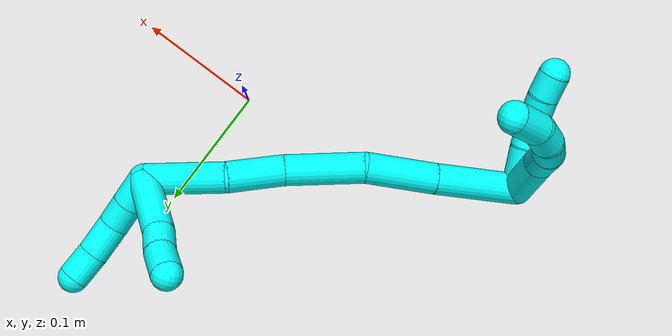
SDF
<sdf version="1.7">
 <world name="default">
  <model name="3">
   <static>0</static>
   <link name="3">
    <collision name="collision-cylinder-e_1_2_8">
     <pose>0.017712 -0.007027 -0.017531 2.76037 0.753314 2.23389</pose>
     <geometry><cylinder><radius>0.0125</radius><length>0.051785</length></cylinder></geometry>
     <surface>
      <friction><ode><mu>1.16</mu><mu2>1.16</mu2><slip1>0</slip1><slip2>0</slip2></ode></friction>
      <contact><ode><kp>1e+06</kp><kd>1</kd><max_vel>0</max_vel><min_depth>0.001</min_depth></ode></contact>
     </surface>
    </collision>
    <visual name="visual-cylinder-e_1_2_8">
     <pose>0.017712 -0.007027 -0.017531 2.76037 0.753314 2.23389</pose>
     <geometry><cylinder><radius>0.0125</radius><length>0.051785</length></cylinder></geometry>
     <material><ambient>0.003922 1 0.996078 1</ambient></material>
    </visual>
    <collision name="collision-cylinder-e_2_8_9">
     <pose>0.047126 -0.017711 -0.042239 2.67033 0.967938 2.28471</pose>
     <geometry><cylinder><radius>0.0125</radius><length>0.028412</length></cylinder></geometry>
     <surface>
      <friction><ode><mu>1.16</mu><mu2>1.16</mu2><slip1>0</slip1><slip2>0</slip2></ode></friction>
      <contact><ode><kp>1e+06</kp><kd>1</kd><max_vel>0</max_vel><min_depth>0.001</min_depth></ode></contact>
     </surface>
    </collision>
    <visual name="visual-cylinder-e_2_8_9">
     <pose>0.047126 -0.017711 -0.042239 2.67033 0.967938 2.28471</pose>
     <geometry><cylinder><radius>0.0125</radius><length>0.028412</length></cylinder></geometry>
     <material><ambient>0.003922 1 0.996078 1</ambient></material>
    </visual>
    <collision name="collision-cylinder-e_3_9_10">
     <pose>0.068001 -0.020752 -0.054767 -3.02702 1.03976 -2.94188</pose>
     <geometry><cylinder><radius>0.0125</radius><length>0.021275</length></cylinder></geometry>
     <surface>
      <friction><ode><mu>1.16</mu><mu2>1.16</mu2><slip1>0</slip1><slip2>0</slip2></ode></friction>
      <contact><ode><kp>1e+06</kp><kd>1</kd><max_vel>0</max_vel><min_depth>0.001</min_depth></ode></contact>
     </surface>
    </collision>
    <visual name="visual-cylinder-e_3_9_10">
     <pose>0.068001 -0.020752 -0.054767 -3.02702 1.03976 -2.94188</pose>
     <geometry><cylinder><radius>0.0125</radius><length>0.021275</length></cylinder></geometry>
     <material><ambient>0.003922 1 0.996078 1</ambient></material>
    </visual>
    <collision name="collision-cylinder-e_4_10_11">
     <pose>0.085385 -0.016444 -0.065021 -2.49602 0.929045 -1.96443</pose>
     <geometry><cylinder><radius>0.0125</radius><length>0.020503</length></cylinder></geometry>
     <surface>
      <friction><ode><mu>1.16</mu><mu2>1.16</mu2><slip1>0</slip1><slip2>0</slip2></ode></friction>
      <contact><ode><kp>1e+06</kp><kd>1</kd><max_vel>0</max_vel><min_depth>0.001</min_depth></ode></contact>
     </surface>
    </collision>
    <visual name="visual-cylinder-e_4_10_11">
     <pose>0.085385 -0.016444 -0.065021 -2.49602 0.929045 -1.96443</pose>
     <geometry><cylinder><radius>0.0125</radius><length>0.020503</length></cylinder></geometry>
     <material><ambient>0.003922 1 0.996078 1</ambient></material>
    </visual>
    <collision name="collision-cylinder-e_5_11_6">
     <pose>0.104946 -0.005016 -0.072698 -1.91528 0.944051 -1.25534</pose>
     <geometry><cylinder><radius>0.0125</radius><length>0.028024</length></cylinder></geometry>
     <surface>
      <friction><ode><mu>1.16</mu><mu2>1.16</mu2><slip1>0</slip1><slip2>0</slip2></ode></friction>
      <contact><ode><kp>1e+06</kp><kd>1</kd><max_vel>0</max_vel><min_depth>0.001</min_depth></ode></contact>
     </surface>
    </collision>
    <visual name="visual-cylinder-e_5_11_6">
     <pose>0.104946 -0.005016 -0.072698 -1.91528 0.944051 -1.25534</pose>
     <geometry><cylinder><radius>0.0125</radius><length>0.028024</length></cylinder></geometry>
     <material><ambient>0.003922 1 0.996078 1</ambient></material>
    </visual>
    <collision name="collision-cylinder-e_1_2_12">
     <pose>0.000857 0.002654 -0.01733 -2.98965 0.048864 -0.621301</pose>
     <geometry><cylinder><radius>0.0125</radius><length>0.035106</length></cylinder></geometry>
     <surface>
      <friction><ode><mu>1.16</mu><mu2>1.16</mu2><slip1>0</slip1><slip2>0</slip2></ode></friction>
      <contact><ode><kp>1e+06</kp><kd>1</kd><max_vel>0</max_vel><min_depth>0.001</min_depth></ode></contact>
     </surface>
    </collision>
    <visual name="visual-cylinder-e_1_2_12">
     <pose>0.000857 0.002654 -0.01733 -2.98965 0.048864 -0.621301</pose>
     <geometry><cylinder><radius>0.0125</radius><length>0.035106</length></cylinder></geometry>
     <material><ambient>0.003922 1 0.996078 1</ambient></material>
    </visual>
    <collision name="collision-cylinder-e_2_12_13">
     <pose>0.001203 0.006366 -0.045775 -3.04661 -0.045763 0.897503</pose>
     <geometry><cylinder><radius>0.0125</radius><length>0.022353</length></cylinder></geometry>
     <surface>
      <friction><ode><mu>1.16</mu><mu2>1.16</mu2><slip1>0</slip1><slip2>0</slip2></ode></friction>
      <contact><ode><kp>1e+06</kp><kd>1</kd><max_vel>0</max_vel><min_depth>0.001</min_depth></ode></contact>
     </surface>
    </collision>
    <visual name="visual-cylinder-e_2_12_13">
     <pose>0.001203 0.006366 -0.045775 -3.04661 -0.045763 0.897503</pose>
     <geometry><cylinder><radius>0.0125</radius><length>0.022353</length></cylinder></geometry>
     <material><ambient>0.003922 1 0.996078 1</ambient></material>
    </visual>
    <collision name="collision-cylinder-e_3_13_14">
     <pose>0.003135 0.007118 -0.06759 3.11293 0.224344 2.88852</pose>
     <geometry><cylinder><radius>0.0125</radius><length>0.021961</length></cylinder></geometry>
     <surface>
      <friction><ode><mu>1.16</mu><mu2>1.16</mu2><slip1>0</slip1><slip2>0</slip2></ode></friction>
      <contact><ode><kp>1e+06</kp><kd>1</kd><max_vel>0</max_vel><min_depth>0.001</min_depth></ode></contact>
     </surface>
    </collision>
    <visual name="visual-cylinder-e_3_13_14">
     <pose>0.003135 0.007118 -0.06759 3.11293 0.224344 2.88852</pose>
     <geometry><cylinder><radius>0.0125</radius><length>0.021961</length></cylinder></geometry>
     <material><ambient>0.003922 1 0.996078 1</ambient></material>
    </visual>
    <collision name="collision-cylinder-e_4_14_5">
     <pose>0.006778 0.005771 -0.088458 3.03963 0.11687 1.70707</pose>
     <geometry><cylinder><radius>0.0125</radius><length>0.020579</length></cylinder></geometry>
     <surface>
      <friction><ode><mu>1.16</mu><mu2>1.16</mu2><slip1>0</slip1><slip2>0</slip2></ode></friction>
      <contact><ode><kp>1e+06</kp><kd>1</kd><max_vel>0</max_vel><min_depth>0.001</min_depth></ode></contact>
     </surface>
    </collision>
    <visual name="visual-cylinder-e_4_14_5">
     <pose>0.006778 0.005771 -0.088458 3.03963 0.11687 1.70707</pose>
     <geometry><cylinder><radius>0.0125</radius><length>0.020579</length></cylinder></geometry>
     <material><ambient>0.003922 1 0.996078 1</ambient></material>
    </visual>
    <collision name="collision-cylinder-e_1_2_15">
     <pose>0.016853 0.028982 0.005405 -1.38643 0.519302 -0.434412</pose>
     <geometry><cylinder><radius>0.0125</radius><length>0.067916</length></cylinder></geometry>
     <surface>
      <friction><ode><mu>1.16</mu><mu2>1.16</mu2><slip1>0</slip1><slip2>0</slip2></ode></friction>
      <contact><ode><kp>1e+06</kp><kd>1</kd><max_vel>0</max_vel><min_depth>0.001</min_depth></ode></contact>
     </surface>
    </collision>
    <visual name="visual-cylinder-e_1_2_15">
     <pose>0.016853 0.028982 0.005405 -1.38643 0.519302 -0.434412</pose>
     <geometry><cylinder><radius>0.0125</radius><length>0.067916</length></cylinder></geometry>
     <material><ambient>0.003922 1 0.996078 1</ambient></material>
    </visual>
    <collision name="collision-cylinder-e_2_15_16">
     <pose>0.047646 0.08277 0.014538 -1.42161 0.507238 -0.43911</pose>
     <geometry><cylinder><radius>0.0125</radius><length>0.057398</length></cylinder></geometry>
     <surface>
      <friction><ode><mu>1.16</mu><mu2>1.16</mu2><slip1>0</slip1><slip2>0</slip2></ode></friction>
      <contact><ode><kp>1e+06</kp><kd>1</kd><max_vel>0</max_vel><min_depth>0.001</min_depth></ode></contact>
     </surface>
    </collision>
    <visual name="visual-cylinder-e_2_15_16">
     <pose>0.047646 0.08277 0.014538 -1.42161 0.507238 -0.43911</pose>
     <geometry><cylinder><radius>0.0125</radius><length>0.057398</length></cylinder></geometry>
     <material><ambient>0.003922 1 0.996078 1</ambient></material>
    </visual>
    <collision name="collision-cylinder-e_3_16_17">
     <pose>0.072792 0.135328 0.029714 -1.17956 0.357262 -0.240503</pose>
     <geometry><cylinder><radius>0.0125</radius><length>0.064085</length></cylinder></geometry>
     <surface>
      <friction><ode><mu>1.16</mu><mu2>1.16</mu2><slip1>0</slip1><slip2>0</slip2></ode></friction>
      <contact><ode><kp>1e+06</kp><kd>1</kd><max_vel>0</max_vel><min_depth>0.001</min_depth></ode></contact>
     </surface>
    </collision>
    <visual name="visual-cylinder-e_3_16_17">
     <pose>0.072792 0.135328 0.029714 -1.17956 0.357262 -0.240503</pose>
     <geometry><cylinder><radius>0.0125</radius><length>0.064085</length></cylinder></geometry>
     <material><ambient>0.003922 1 0.996078 1</ambient></material>
    </visual>
    <collision name="collision-cylinder-e_4_17_18">
     <pose>0.097692 0.180206 0.049548 -1.11547 0.62274 -0.396257</pose>
     <geometry><cylinder><radius>0.0125</radius><length>0.046955</length></cylinder></geometry>
     <surface>
      <friction><ode><mu>1.16</mu><mu2>1.16</mu2><slip1>0</slip1><slip2>0</slip2></ode></friction>
      <contact><ode><kp>1e+06</kp><kd>1</kd><max_vel>0</max_vel><min_depth>0.001</min_depth></ode></contact>
     </surface>
    </collision>
    <visual name="visual-cylinder-e_4_17_18">
     <pose>0.097692 0.180206 0.049548 -1.11547 0.62274 -0.396257</pose>
     <geometry><cylinder><radius>0.0125</radius><length>0.046955</length></cylinder></geometry>
     <material><ambient>0.003922 1 0.996078 1</ambient></material>
    </visual>
    <collision name="collision-cylinder-e_5_18_1">
     <pose>0.12271 0.22493 0.06902 -1.1888 0.363838 -0.247415</pose>
     <geometry><cylinder><radius>0.0125</radius><length>0.063646</length></cylinder></geometry>
     <surface>
      <friction><ode><mu>1.16</mu><mu2>1.16</mu2><slip1>0</slip1><slip2>0</slip2></ode></friction>
      <contact><ode><kp>1e+06</kp><kd>1</kd><max_vel>0</max_vel><min_depth>0.001</min_depth></ode></contact>
     </surface>
    </collision>
    <visual name="visual-cylinder-e_5_18_1">
     <pose>0.12271 0.22493 0.06902 -1.1888 0.363838 -0.247415</pose>
     <geometry><cylinder><radius>0.0125</radius><length>0.063646</length></cylinder></geometry>
     <material><ambient>0.003922 1 0.996078 1</ambient></material>
    </visual>
    <collision name="collision-cylinder-e_1_1_19">
     <pose>0.134114 0.255981 0.092003 -0.282616 0.006453 -0.000918</pose>
     <geometry><cylinder><radius>0.0125</radius><length>0.024777</length></cylinder></geometry>
     <surface>
      <friction><ode><mu>1.16</mu><mu2>1.16</mu2><slip1>0</slip1><slip2>0</slip2></ode></friction>
      <contact><ode><kp>1e+06</kp><kd>1</kd><max_vel>0</max_vel><min_depth>0.001</min_depth></ode></contact>
     </surface>
    </collision>
    <visual name="visual-cylinder-e_1_1_19">
     <pose>0.134114 0.255981 0.092003 -0.282616 0.006453 -0.000918</pose>
     <geometry><cylinder><radius>0.0125</radius><length>0.024777</length></cylinder></geometry>
     <material><ambient>0.003922 1 0.996078 1</ambient></material>
    </visual>
    <collision name="collision-cylinder-e_2_19_20">
     <pose>0.134205 0.262489 0.114518 -0.280007 0.000966 -0.000136</pose>
     <geometry><cylinder><radius>0.0125</radius><length>0.022097</length></cylinder></geometry>
     <surface>
      <friction><ode><mu>1.16</mu><mu2>1.16</mu2><slip1>0</slip1><slip2>0</slip2></ode></friction>
      <contact><ode><kp>1e+06</kp><kd>1</kd><max_vel>0</max_vel><min_depth>0.001</min_depth></ode></contact>
     </surface>
    </collision>
    <visual name="visual-cylinder-e_2_19_20">
     <pose>0.134205 0.262489 0.114518 -0.280007 0.000966 -0.000136</pose>
     <geometry><cylinder><radius>0.0125</radius><length>0.022097</length></cylinder></geometry>
     <material><ambient>0.003922 1 0.996078 1</ambient></material>
    </visual>
    <collision name="collision-cylinder-e_3_20_21">
     <pose>0.13812 0.268571 0.138598 -0.221296 0.275745 -0.030829</pose>
     <geometry><cylinder><radius>0.0125</radius><length>0.028681</length></cylinder></geometry>
     <surface>
      <friction><ode><mu>1.16</mu><mu2>1.16</mu2><slip1>0</slip1><slip2>0</slip2></ode></friction>
      <contact><ode><kp>1e+06</kp><kd>1</kd><max_vel>0</max_vel><min_depth>0.001</min_depth></ode></contact>
     </surface>
    </collision>
    <visual name="visual-cylinder-e_3_20_21">
     <pose>0.13812 0.268571 0.138598 -0.221296 0.275745 -0.030829</pose>
     <geometry><cylinder><radius>0.0125</radius><length>0.028681</length></cylinder></geometry>
     <material><ambient>0.003922 1 0.996078 1</ambient></material>
    </visual>
    <collision name="collision-cylinder-e_4_21_4">
     <pose>0.146258 0.274606 0.163126 -0.26532 0.353676 -0.047685</pose>
     <geometry><cylinder><radius>0.0125</radius><length>0.024445</length></cylinder></geometry>
     <surface>
      <friction><ode><mu>1.16</mu><mu2>1.16</mu2><slip1>0</slip1><slip2>0</slip2></ode></friction>
      <contact><ode><kp>1e+06</kp><kd>1</kd><max_vel>0</max_vel><min_depth>0.001</min_depth></ode></contact>
     </surface>
    </collision>
    <visual name="visual-cylinder-e_4_21_4">
     <pose>0.146258 0.274606 0.163126 -0.26532 0.353676 -0.047685</pose>
     <geometry><cylinder><radius>0.0125</radius><length>0.024445</length></cylinder></geometry>
     <material><ambient>0.003922 1 0.996078 1</ambient></material>
    </visual>
    <collision name="collision-cylinder-e_1_1_22">
     <pose>0.149217 0.233332 0.091259 1.04444 0.599861 0.352278</pose>
     <geometry><cylinder><radius>0.0125</radius><length>0.053787</length></cylinder></geometry>
     <surface>
      <friction><ode><mu>1.16</mu><mu2>1.16</mu2><slip1>0</slip1><slip2>0</slip2></ode></friction>
      <contact><ode><kp>1e+06</kp><kd>1</kd><max_vel>0</max_vel><min_depth>0.001</min_depth></ode></contact>
     </surface>
    </collision>
    <visual name="visual-cylinder-e_1_1_22">
     <pose>0.149217 0.233332 0.091259 1.04444 0.599861 0.352278</pose>
     <geometry><cylinder><radius>0.0125</radius><length>0.053787</length></cylinder></geometry>
     <material><ambient>0.003922 1 0.996078 1</ambient></material>
    </visual>
    <collision name="collision-cylinder-e_2_22_23">
     <pose>0.172094 0.208013 0.106204 1.01633 0.818271 0.473921</pose>
     <geometry><cylinder><radius>0.0125</radius><length>0.021083</length></cylinder></geometry>
     <surface>
      <friction><ode><mu>1.16</mu><mu2>1.16</mu2><slip1>0</slip1><slip2>0</slip2></ode></friction>
      <contact><ode><kp>1e+06</kp><kd>1</kd><max_vel>0</max_vel><min_depth>0.001</min_depth></ode></contact>
     </surface>
    </collision>
    <visual name="visual-cylinder-e_2_22_23">
     <pose>0.172094 0.208013 0.106204 1.01633 0.818271 0.473921</pose>
     <geometry><cylinder><radius>0.0125</radius><length>0.021083</length></cylinder></geometry>
     <material><ambient>0.003922 1 0.996078 1</ambient></material>
    </visual>
    <collision name="collision-cylinder-e_3_23_3">
     <pose>0.188208 0.193099 0.113119 1.22954 0.73432 0.530297</pose>
     <geometry><cylinder><radius>0.0125</radius><length>0.02513</length></cylinder></geometry>
     <surface>
      <friction><ode><mu>1.16</mu><mu2>1.16</mu2><slip1>0</slip1><slip2>0</slip2></ode></friction>
      <contact><ode><kp>1e+06</kp><kd>1</kd><max_vel>0</max_vel><min_depth>0.001</min_depth></ode></contact>
     </surface>
    </collision>
    <visual name="visual-cylinder-e_3_23_3">
     <pose>0.188208 0.193099 0.113119 1.22954 0.73432 0.530297</pose>
     <geometry><cylinder><radius>0.0125</radius><length>0.02513</length></cylinder></geometry>
     <material><ambient>0.003922 1 0.996078 1</ambient></material>
    </visual>
    <collision name="collision-sphere-3">
     <pose>0.196628 0.18431 0.11624 0 -0 0</pose>
     <geometry><sphere><radius>0.0125</radius></sphere></geometry>
     <surface>
      <friction><ode><mu>1.16</mu><mu2>1.16</mu2><slip1>0</slip1><slip2>0</slip2></ode></friction>
      <contact><ode><kp>1e+06</kp><kd>1</kd><max_vel>0</max_vel><min_depth>0.001</min_depth></ode></contact>
     </surface>
    </collision>
    <visual name="visual-sphere-3">
     <pose>0.196628 0.18431 0.11624 0 -0 0</pose>
     <geometry><sphere><radius>0.0125</radius></sphere></geometry>
     <material><ambient>0.003922 1 0.996078 1</ambient></material>
    </visual>
    <collision name="collision-sphere-23">
     <pose>0.179789 0.201887 0.109997 0 -0 0</pose>
     <geometry><sphere><radius>0.0125</radius></sphere></geometry>
     <surface>
      <friction><ode><mu>1.16</mu><mu2>1.16</mu2><slip1>0</slip1><slip2>0</slip2></ode></friction>
      <contact><ode><kp>1e+06</kp><kd>1</kd><max_vel>0</max_vel><min_depth>0.001</min_depth></ode></contact>
     </surface>
    </collision>
    <visual name="visual-sphere-23">
     <pose>0.179789 0.201887 0.109997 0 -0 0</pose>
     <geometry><sphere><radius>0.0125</radius></sphere></geometry>
     <material><ambient>0.003922 1 0.996078 1</ambient></material>
    </visual>
    <collision name="collision-sphere-22">
     <pose>0.164399 0.214138 0.102411 0 -0 0</pose>
     <geometry><sphere><radius>0.0125</radius></sphere></geometry>
     <surface>
      <friction><ode><mu>1.16</mu><mu2>1.16</mu2><slip1>0</slip1><slip2>0</slip2></ode></friction>
      <contact><ode><kp>1e+06</kp><kd>1</kd><max_vel>0</max_vel><min_depth>0.001</min_depth></ode></contact>
     </surface>
    </collision>
    <visual name="visual-sphere-22">
     <pose>0.164399 0.214138 0.102411 0 -0 0</pose>
     <geometry><sphere><radius>0.0125</radius></sphere></geometry>
     <material><ambient>0.003922 1 0.996078 1</ambient></material>
    </visual>
    <collision name="collision-sphere-4">
     <pose>0.150491 0.277613 0.174191 0 -0 0</pose>
     <geometry><sphere><radius>0.0125</radius></sphere></geometry>
     <surface>
      <friction><ode><mu>1.16</mu><mu2>1.16</mu2><slip1>0</slip1><slip2>0</slip2></ode></friction>
      <contact><ode><kp>1e+06</kp><kd>1</kd><max_vel>0</max_vel><min_depth>0.001</min_depth></ode></contact>
     </surface>
    </collision>
    <visual name="visual-sphere-4">
     <pose>0.150491 0.277613 0.174191 0 -0 0</pose>
     <geometry><sphere><radius>0.0125</radius></sphere></geometry>
     <material><ambient>0.003922 1 0.996078 1</ambient></material>
    </visual>
    <collision name="collision-sphere-21">
     <pose>0.142024 0.2716 0.152061 0 -0 0</pose>
     <geometry><sphere><radius>0.0125</radius></sphere></geometry>
     <surface>
      <friction><ode><mu>1.16</mu><mu2>1.16</mu2><slip1>0</slip1><slip2>0</slip2></ode></friction>
      <contact><ode><kp>1e+06</kp><kd>1</kd><max_vel>0</max_vel><min_depth>0.001</min_depth></ode></contact>
     </surface>
    </collision>
    <visual name="visual-sphere-21">
     <pose>0.142024 0.2716 0.152061 0 -0 0</pose>
     <geometry><sphere><radius>0.0125</radius></sphere></geometry>
     <material><ambient>0.003922 1 0.996078 1</ambient></material>
    </visual>
    <collision name="collision-sphere-20">
     <pose>0.134216 0.265542 0.125136 0 -0 0</pose>
     <geometry><sphere><radius>0.0125</radius></sphere></geometry>
     <surface>
      <friction><ode><mu>1.16</mu><mu2>1.16</mu2><slip1>0</slip1><slip2>0</slip2></ode></friction>
      <contact><ode><kp>1e+06</kp><kd>1</kd><max_vel>0</max_vel><min_depth>0.001</min_depth></ode></contact>
     </surface>
    </collision>
    <visual name="visual-sphere-20">
     <pose>0.134216 0.265542 0.125136 0 -0 0</pose>
     <geometry><sphere><radius>0.0125</radius></sphere></geometry>
     <material><ambient>0.003922 1 0.996078 1</ambient></material>
    </visual>
    <collision name="collision-sphere-6">
     <pose>0.116295 0.002719 -0.075473 0 -0 0</pose>
     <geometry><sphere><radius>0.0125</radius></sphere></geometry>
     <surface>
      <friction><ode><mu>1.16</mu><mu2>1.16</mu2><slip1>0</slip1><slip2>0</slip2></ode></friction>
      <contact><ode><kp>1e+06</kp><kd>1</kd><max_vel>0</max_vel><min_depth>0.001</min_depth></ode></contact>
     </surface>
    </collision>
    <visual name="visual-sphere-6">
     <pose>0.116295 0.002719 -0.075473 0 -0 0</pose>
     <geometry><sphere><radius>0.0125</radius></sphere></geometry>
     <material><ambient>0.003922 1 0.996078 1</ambient></material>
    </visual>
    <collision name="collision-sphere-11">
     <pose>0.093597 -0.012752 -0.069922 0 -0 0</pose>
     <geometry><sphere><radius>0.0125</radius></sphere></geometry>
     <surface>
      <friction><ode><mu>1.16</mu><mu2>1.16</mu2><slip1>0</slip1><slip2>0</slip2></ode></friction>
      <contact><ode><kp>1e+06</kp><kd>1</kd><max_vel>0</max_vel><min_depth>0.001</min_depth></ode></contact>
     </surface>
    </collision>
    <visual name="visual-sphere-11">
     <pose>0.093597 -0.012752 -0.069922 0 -0 0</pose>
     <geometry><sphere><radius>0.0125</radius></sphere></geometry>
     <material><ambient>0.003922 1 0.996078 1</ambient></material>
    </visual>
    <collision name="collision-sphere-10">
     <pose>0.077173 -0.020136 -0.060119 0 -0 0</pose>
     <geometry><sphere><radius>0.0125</radius></sphere></geometry>
     <surface>
      <friction><ode><mu>1.16</mu><mu2>1.16</mu2><slip1>0</slip1><slip2>0</slip2></ode></friction>
      <contact><ode><kp>1e+06</kp><kd>1</kd><max_vel>0</max_vel><min_depth>0.001</min_depth></ode></contact>
     </surface>
    </collision>
    <visual name="visual-sphere-10">
     <pose>0.077173 -0.020136 -0.060119 0 -0 0</pose>
     <geometry><sphere><radius>0.0125</radius></sphere></geometry>
     <material><ambient>0.003922 1 0.996078 1</ambient></material>
    </visual>
    <collision name="collision-sphere-9">
     <pose>0.058828 -0.021368 -0.049416 0 -0 0</pose>
     <geometry><sphere><radius>0.0125</radius></sphere></geometry>
     <surface>
      <friction><ode><mu>1.16</mu><mu2>1.16</mu2><slip1>0</slip1><slip2>0</slip2></ode></friction>
      <contact><ode><kp>1e+06</kp><kd>1</kd><max_vel>0</max_vel><min_depth>0.001</min_depth></ode></contact>
     </surface>
    </collision>
    <visual name="visual-sphere-9">
     <pose>0.058828 -0.021368 -0.049416 0 -0 0</pose>
     <geometry><sphere><radius>0.0125</radius></sphere></geometry>
     <material><ambient>0.003922 1 0.996078 1</ambient></material>
    </visual>
    <collision name="collision-sphere-2">
     <geometry><sphere><radius>0.0125</radius></sphere></geometry>
     <surface>
      <friction><ode><mu>1.16</mu><mu2>1.16</mu2><slip1>0</slip1><slip2>0</slip2></ode></friction>
      <contact><ode><kp>1e+06</kp><kd>1</kd><max_vel>0</max_vel><min_depth>0.001</min_depth></ode></contact>
     </surface>
    </collision>
    <visual name="visual-sphere-2">
     <geometry><sphere><radius>0.0125</radius></sphere></geometry>
     <material><ambient>0.003922 1 0.996078 1</ambient></material>
    </visual>
    <collision name="collision-sphere-19">
     <pose>0.134194 0.259435 0.1039 0 -0 0</pose>
     <geometry><sphere><radius>0.0125</radius></sphere></geometry>
     <surface>
      <friction><ode><mu>1.16</mu><mu2>1.16</mu2><slip1>0</slip1><slip2>0</slip2></ode></friction>
      <contact><ode><kp>1e+06</kp><kd>1</kd><max_vel>0</max_vel><min_depth>0.001</min_depth></ode></contact>
     </surface>
    </collision>
    <visual name="visual-sphere-19">
     <pose>0.134194 0.259435 0.1039 0 -0 0</pose>
     <geometry><sphere><radius>0.0125</radius></sphere></geometry>
     <material><ambient>0.003922 1 0.996078 1</ambient></material>
    </visual>
    <collision name="collision-sphere-8">
     <pose>0.035424 -0.014054 -0.035062 0 -0 0</pose>
     <geometry><sphere><radius>0.0125</radius></sphere></geometry>
     <surface>
      <friction><ode><mu>1.16</mu><mu2>1.16</mu2><slip1>0</slip1><slip2>0</slip2></ode></friction>
      <contact><ode><kp>1e+06</kp><kd>1</kd><max_vel>0</max_vel><min_depth>0.001</min_depth></ode></contact>
     </surface>
    </collision>
    <visual name="visual-sphere-8">
     <pose>0.035424 -0.014054 -0.035062 0 -0 0</pose>
     <geometry><sphere><radius>0.0125</radius></sphere></geometry>
     <material><ambient>0.003922 1 0.996078 1</ambient></material>
    </visual>
    <collision name="collision-sphere-12">
     <pose>0.001715 0.005307 -0.034661 0 -0 0</pose>
     <geometry><sphere><radius>0.0125</radius></sphere></geometry>
     <surface>
      <friction><ode><mu>1.16</mu><mu2>1.16</mu2><slip1>0</slip1><slip2>0</slip2></ode></friction>
      <contact><ode><kp>1e+06</kp><kd>1</kd><max_vel>0</max_vel><min_depth>0.001</min_depth></ode></contact>
     </surface>
    </collision>
    <visual name="visual-sphere-12">
     <pose>0.001715 0.005307 -0.034661 0 -0 0</pose>
     <geometry><sphere><radius>0.0125</radius></sphere></geometry>
     <material><ambient>0.003922 1 0.996078 1</ambient></material>
    </visual>
    <collision name="collision-sphere-13">
     <pose>0.000692 0.007425 -0.056889 0 -0 0</pose>
     <geometry><sphere><radius>0.0125</radius></sphere></geometry>
     <surface>
      <friction><ode><mu>1.16</mu><mu2>1.16</mu2><slip1>0</slip1><slip2>0</slip2></ode></friction>
      <contact><ode><kp>1e+06</kp><kd>1</kd><max_vel>0</max_vel><min_depth>0.001</min_depth></ode></contact>
     </surface>
    </collision>
    <visual name="visual-sphere-13">
     <pose>0.000692 0.007425 -0.056889 0 -0 0</pose>
     <geometry><sphere><radius>0.0125</radius></sphere></geometry>
     <material><ambient>0.003922 1 0.996078 1</ambient></material>
    </visual>
    <collision name="collision-sphere-14">
     <pose>0.005578 0.006811 -0.078292 0 -0 0</pose>
     <geometry><sphere><radius>0.0125</radius></sphere></geometry>
     <surface>
      <friction><ode><mu>1.16</mu><mu2>1.16</mu2><slip1>0</slip1><slip2>0</slip2></ode></friction>
      <contact><ode><kp>1e+06</kp><kd>1</kd><max_vel>0</max_vel><min_depth>0.001</min_depth></ode></contact>
     </surface>
    </collision>
    <visual name="visual-sphere-14">
     <pose>0.005578 0.006811 -0.078292 0 -0 0</pose>
     <geometry><sphere><radius>0.0125</radius></sphere></geometry>
     <material><ambient>0.003922 1 0.996078 1</ambient></material>
    </visual>
    <collision name="collision-sphere-5">
     <pose>0.007978 0.004731 -0.098624 0 -0 0</pose>
     <geometry><sphere><radius>0.0125</radius></sphere></geometry>
     <surface>
      <friction><ode><mu>1.16</mu><mu2>1.16</mu2><slip1>0</slip1><slip2>0</slip2></ode></friction>
      <contact><ode><kp>1e+06</kp><kd>1</kd><max_vel>0</max_vel><min_depth>0.001</min_depth></ode></contact>
     </surface>
    </collision>
    <visual name="visual-sphere-5">
     <pose>0.007978 0.004731 -0.098624 0 -0 0</pose>
     <geometry><sphere><radius>0.0125</radius></sphere></geometry>
     <material><ambient>0.003922 1 0.996078 1</ambient></material>
    </visual>
    <collision name="collision-sphere-15">
     <pose>0.033705 0.057963 0.010809 0 -0 0</pose>
     <geometry><sphere><radius>0.0125</radius></sphere></geometry>
     <surface>
      <friction><ode><mu>1.16</mu><mu2>1.16</mu2><slip1>0</slip1><slip2>0</slip2></ode></friction>
      <contact><ode><kp>1e+06</kp><kd>1</kd><max_vel>0</max_vel><min_depth>0.001</min_depth></ode></contact>
     </surface>
    </collision>
    <visual name="visual-sphere-15">
     <pose>0.033705 0.057963 0.010809 0 -0 0</pose>
     <geometry><sphere><radius>0.0125</radius></sphere></geometry>
     <material><ambient>0.003922 1 0.996078 1</ambient></material>
    </visual>
    <collision name="collision-sphere-16">
     <pose>0.061587 0.107577 0.018267 0 -0 0</pose>
     <geometry><sphere><radius>0.0125</radius></sphere></geometry>
     <surface>
      <friction><ode><mu>1.16</mu><mu2>1.16</mu2><slip1>0</slip1><slip2>0</slip2></ode></friction>
      <contact><ode><kp>1e+06</kp><kd>1</kd><max_vel>0</max_vel><min_depth>0.001</min_depth></ode></contact>
     </surface>
    </collision>
    <visual name="visual-sphere-16">
     <pose>0.061587 0.107577 0.018267 0 -0 0</pose>
     <geometry><sphere><radius>0.0125</radius></sphere></geometry>
     <material><ambient>0.003922 1 0.996078 1</ambient></material>
    </visual>
    <collision name="collision-sphere-17">
     <pose>0.083998 0.163078 0.041161 0 -0 0</pose>
     <geometry><sphere><radius>0.0125</radius></sphere></geometry>
     <surface>
      <friction><ode><mu>1.16</mu><mu2>1.16</mu2><slip1>0</slip1><slip2>0</slip2></ode></friction>
      <contact><ode><kp>1e+06</kp><kd>1</kd><max_vel>0</max_vel><min_depth>0.001</min_depth></ode></contact>
     </surface>
    </collision>
    <visual name="visual-sphere-17">
     <pose>0.083998 0.163078 0.041161 0 -0 0</pose>
     <geometry><sphere><radius>0.0125</radius></sphere></geometry>
     <material><ambient>0.003922 1 0.996078 1</ambient></material>
    </visual>
    <collision name="collision-sphere-18">
     <pose>0.111385 0.197333 0.057934 0 -0 0</pose>
     <geometry><sphere><radius>0.0125</radius></sphere></geometry>
     <surface>
      <friction><ode><mu>1.16</mu><mu2>1.16</mu2><slip1>0</slip1><slip2>0</slip2></ode></friction>
      <contact><ode><kp>1e+06</kp><kd>1</kd><max_vel>0</max_vel><min_depth>0.001</min_depth></ode></contact>
     </surface>
    </collision>
    <visual name="visual-sphere-18">
     <pose>0.111385 0.197333 0.057934 0 -0 0</pose>
     <geometry><sphere><radius>0.0125</radius></sphere></geometry>
     <material><ambient>0.003922 1 0.996078 1</ambient></material>
    </visual>
    <collision name="collision-sphere-1">
     <pose>0.134035 0.252526 0.080106 0 -0 0</pose>
     <geometry><sphere><radius>0.0125</radius></sphere></geometry>
     <surface>
      <friction><ode><mu>1.16</mu><mu2>1.16</mu2><slip1>0</slip1><slip2>0</slip2></ode></friction>
      <contact><ode><kp>1e+06</kp><kd>1</kd><max_vel>0</max_vel><min_depth>0.001</min_depth></ode></contact>
     </surface>
    </collision>
    <visual name="visual-sphere-1">
     <pose>0.134035 0.252526 0.080106 0 -0 0</pose>
     <geometry><sphere><radius>0.0125</radius></sphere></geometry>
     <material><ambient>0.003922 1 0.996078 1</ambient></material>
    </visual>
    <inertial>
     <pose>0.079747 0.113653 0.028011 0 -0 0</pose>
     <mass>0.75</mass>
     <inertia>
      <ixx>0.000115</ixx>
      <ixy>0</ixy>
      <ixz>0</ixz>
      <iyy>7.8e-05</iyy>
      <iyz>0</iyz>
      <izz>-0.000151</izz>
     </inertia>
    </inertial>
   </link>
   <pose>-0.215927 -0.072077 0.0122 -2.46609 -1.14079 1.14694</pose>
  </model>
 </world>
</sdf>
